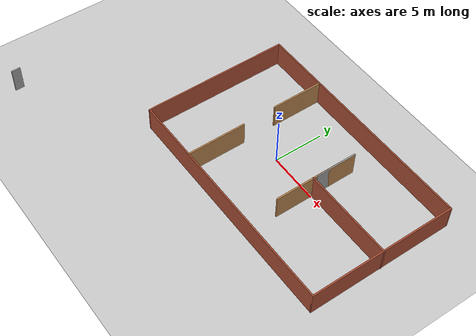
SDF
<sdf version="1.6">
 <world name="default">
  <model name="ground_plane">
   <static>1</static>
   <link name="link">
    <collision name="collision">
     <geometry><plane><normal>0 0 1</normal><size>100 100</size></plane></geometry>
     <surface>
      <contact><collide_bitmask>65535</collide_bitmask></contact>
      <friction><ode><mu>100</mu><mu2>50</mu2></ode></friction>
     </surface>
    </collision>
    <visual name="visual">
     <cast_shadows>0</cast_shadows>
     <geometry><plane><normal>0 0 1</normal><size>100 100</size></plane></geometry>
     <material>
      <script><uri>file://media/materials/scripts/gazebo.material</uri><name>Gazebo/Grey</name></script>
     </material>
    </visual>
   </link>
  </model>
  <light name="sun" type="directional">
   <pose>0 0 10 0 -0 0</pose>
   <diffuse>0.8 0.8 0.8 1</diffuse>
   <specular>0.2 0.2 0.2 1</specular>
   <attenuation>
    <range>1000</range>
    <constant>0.9</constant>
    <linear>0.01</linear>
    <quadratic>0.001</quadratic>
   </attenuation>
   <direction>-0.5 0.1 -0.9</direction>
  </light>
  <scene><shadows>0</shadows><ambient>0.4 0.4 0.4 1</ambient><background>0.7 0.7 0.7 1</background></scene>
  <physics name="default_physics" default="0" type="ode">
   <real_time_update_rate>1000</real_time_update_rate>
   <max_step_size>0.001</max_step_size>
   <real_time_factor>1</real_time_factor>
   <ode>
    <solver>
     <type>quick</type>
     <iters>150</iters>
     <precon_iters>0</precon_iters>
     <sor>1.4</sor>
     <use_dynamic_moi_rescaling>1</use_dynamic_moi_rescaling>
    </solver>
    <constraints>
     <cfm>1e-05</cfm>
     <erp>0.2</erp>
     <contact_max_correcting_vel>2000</contact_max_correcting_vel>
     <contact_surface_layer>0.01</contact_surface_layer>
    </constraints>
   </ode>
  </physics>
  <model name="turtlebot3_house"><static>1</static></model>
  <gravity>0 0 -9.8</gravity>
  <magnetic_field>6e-06 2.3e-05 -4.2e-05</magnetic_field>
  <atmosphere type="adiabatic"/>
  <audio><device>default</device></audio>
  <spherical_coordinates>
   <surface_model>EARTH_WGS84</surface_model>
   <latitude_deg>0</latitude_deg>
   <longitude_deg>0</longitude_deg>
   <elevation>0</elevation>
   <heading_deg>0</heading_deg>
  </spherical_coordinates>
  <model name="Untitled">
   <pose>-3.57531 -3.77592 0 0 -0 0</pose>
   <link name="Wall_10">
    <collision name="Wall_10_Collision">
     <geometry><box><size>14.75 0.15 2.5</size></box></geometry>
     <pose>0 0 1.25 0 -0 0</pose>
    </collision>
    <visual name="Wall_10_Visual">
     <pose>0 0 1.25 0 -0 0</pose>
     <geometry><box><size>14.75 0.15 2.5</size></box></geometry>
     <material>
      <script><uri>file://media/materials/scripts/gazebo.material</uri><name>Gazebo/Bricks</name></script>
      <ambient>1 1 1 1</ambient>
     </material>
     <meta><layer>0</layer></meta>
    </visual>
    <pose>-6.11289 3.97431 0 0 -0 -1.5708</pose>
   </link>
   <link name="Wall_13">
    <collision name="Wall_13_Collision">
     <geometry><box><size>9.25 0.15 2.5</size></box></geometry>
     <pose>0 0 1.25 0 -0 0</pose>
    </collision>
    <visual name="Wall_13_Visual">
     <pose>0 0 1.25 0 -0 0</pose>
     <geometry><box><size>9.25 0.15 2.5</size></box></geometry>
     <material>
      <script><uri>file://media/materials/scripts/gazebo.material</uri><name>Gazebo/Bricks</name></script>
      <ambient>1 1 1 1</ambient>
     </material>
     <meta><layer>0</layer></meta>
    </visual>
    <pose>12.9772 3.92113 0 0 -0 3.14159</pose>
   </link>
   <link name="Wall_15">
    <collision name="Wall_15_Collision">
     <geometry><box><size>5.25 0.15 2.5</size></box></geometry>
     <pose>0 0 1.25 0 -0 0</pose>
    </collision>
    <visual name="Wall_15_Visual">
     <pose>0 0 1.25 0 -0 0</pose>
     <geometry><box><size>5.25 0.15 2.5</size></box></geometry>
     <material>
      <script><uri>file://media/materials/scripts/gazebo.material</uri><name>Gazebo/Wood</name></script>
      <ambient>1 1 1 1</ambient>
     </material>
     <meta><layer>0</layer></meta>
    </visual>
    <pose>0.078576 8.68831 0 0 -0 -1.5708</pose>
   </link>
   <link name="Wall_18">
    <collision name="Wall_18_Collision">
     <geometry><box><size>6 0.15 2.5</size></box></geometry>
     <pose>0 0 1.25 0 -0 0</pose>
    </collision>
    <visual name="Wall_18_Visual">
     <pose>0 0 1.25 0 -0 0</pose>
     <geometry><box><size>6 0.15 2.5</size></box></geometry>
     <material>
      <script><uri>file://media/materials/scripts/gazebo.material</uri><name>Gazebo/Wood</name></script>
      <ambient>1 1 1 1</ambient>
     </material>
     <meta><layer>0</layer></meta>
    </visual>
    <pose>0.148934 -0.340662 0 0 -0 -1.5708</pose>
   </link>
   <link name="Wall_20">
    <collision name="Wall_20_Collision">
     <geometry><box><size>4.25 0.15 2.5</size></box></geometry>
     <pose>0 0 1.25 0 -0 0</pose>
    </collision>
    <visual name="Wall_20_Visual">
     <pose>0 0 1.25 0 -0 0</pose>
     <geometry><box><size>4.25 0.15 2.5</size></box></geometry>
     <material>
      <script><uri>file://media/materials/scripts/gazebo.material</uri><name>Gazebo/Grey</name></script>
      <ambient>1 1 1 1</ambient>
     </material>
     <meta><layer>0</layer></meta>
    </visual>
    <pose>8.45112 6.39328 0 0 -0 1.5708</pose>
   </link>
   <link name="Wall_21">
    <collision name="Wall_21_Collision">
     <geometry><box><size>8.5 0.15 2.5</size></box></geometry>
     <pose>0 0 1.25 0 -0 0</pose>
    </collision>
    <visual name="Wall_21_Visual">
     <pose>0 0 1.25 0 -0 0</pose>
     <geometry><box><size>8.5 0.15 2.5</size></box></geometry>
     <material>
      <script><uri>file://media/materials/scripts/gazebo.material</uri><name>Gazebo/Wood</name></script>
      <ambient>1 1 1 1</ambient>
     </material>
     <meta><layer>0</layer></meta>
    </visual>
    <pose>8.45112 4.26828 0 0 -0 -1.5708</pose>
   </link>
   <link name="Wall_4">
    <collision name="Wall_4_Collision">
     <geometry><box><size>0.890715 0.15 2.5</size></box></geometry>
     <pose>0 0 1.25 0 -0 0</pose>
    </collision>
    <visual name="Wall_4_Visual">
     <pose>0 0 1.25 0 -0 0</pose>
     <geometry><box><size>0.890715 0.15 2.5</size></box></geometry>
     <material>
      <script><uri>file://media/materials/scripts/gazebo.material</uri><name>Gazebo/Grey</name></script>
      <ambient>1 1 1 1</ambient>
     </material>
     <meta><layer>0</layer></meta>
    </visual>
    <pose>-17.5272 -10.904 0 0 -0 -1.5708</pose>
   </link>
   <link name="Wall_7">
    <collision name="Wall_7_Collision">
     <geometry><box><size>23.75 0.15 2.5</size></box></geometry>
     <pose>0 0 1.25 0 -0 0</pose>
    </collision>
    <visual name="Wall_7_Visual">
     <pose>0 0 1.25 0 -0 0</pose>
     <geometry><box><size>23.75 0.15 2.5</size></box></geometry>
     <material>
      <script><uri>file://media/materials/scripts/gazebo.material</uri><name>Gazebo/Bricks</name></script>
      <ambient>1 1 1 1</ambient>
     </material>
     <meta><layer>0</layer></meta>
    </visual>
    <pose>5.68711 -3.32569 0 0 -0 0</pose>
   </link>
   <link name="Wall_8">
    <collision name="Wall_8_Collision">
     <geometry><box><size>14.75 0.15 2.5</size></box></geometry>
     <pose>0 0 1.25 0 -0 0</pose>
    </collision>
    <visual name="Wall_8_Visual">
     <pose>0 0 1.25 0 -0 0</pose>
     <geometry><box><size>14.75 0.15 2.5</size></box></geometry>
     <material>
      <script><uri>file://media/materials/scripts/gazebo.material</uri><name>Gazebo/Bricks</name></script>
      <ambient>1 1 1 1</ambient>
     </material>
     <meta><layer>0</layer></meta>
    </visual>
    <pose>17.4871 3.97431 0 0 -0 1.5708</pose>
   </link>
   <link name="Wall_9">
    <collision name="Wall_9_Collision">
     <geometry><box><size>23.75 0.15 2.5</size></box></geometry>
     <pose>0 0 1.25 0 -0 0</pose>
    </collision>
    <visual name="Wall_9_Visual">
     <pose>0 0 1.25 0 -0 0</pose>
     <geometry><box><size>23.75 0.15 2.5</size></box></geometry>
     <material>
      <script><uri>file://media/materials/scripts/gazebo.material</uri><name>Gazebo/Bricks</name></script>
      <ambient>1 1 1 1</ambient>
     </material>
     <meta><layer>0</layer></meta>
    </visual>
    <pose>5.68711 11.2743 0 0 -0 3.14159</pose>
   </link>
   <static>1</static>
  </model>
 </world>
</sdf>
